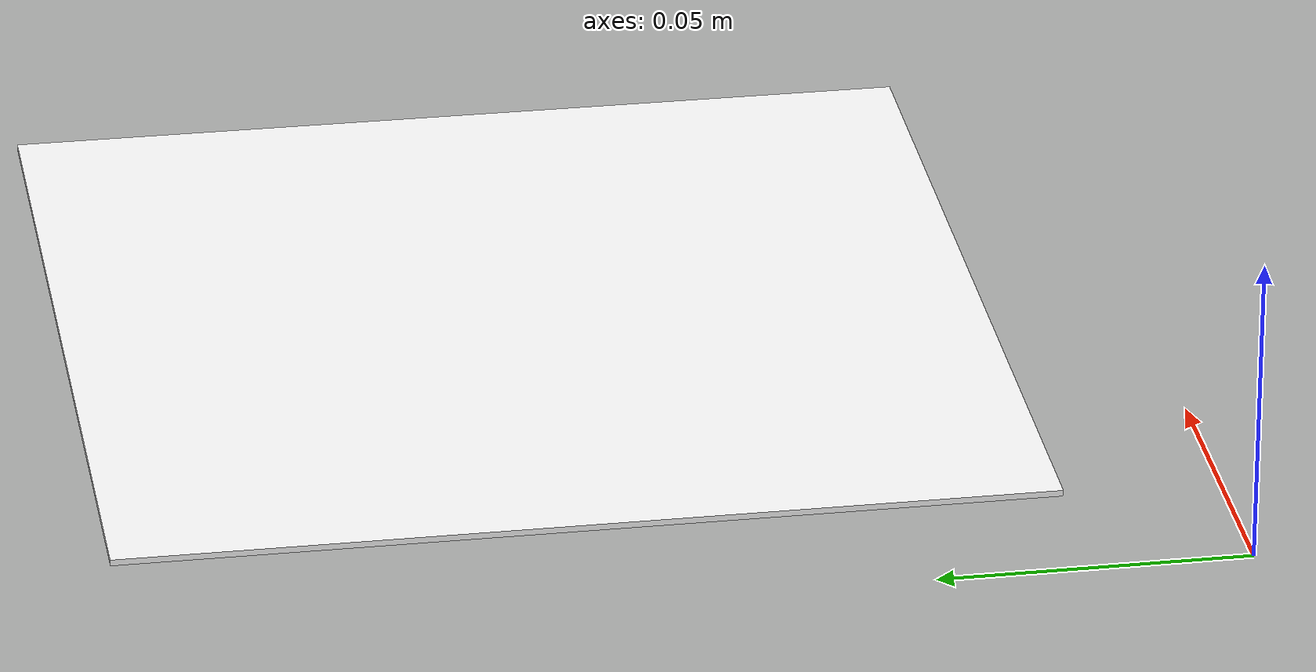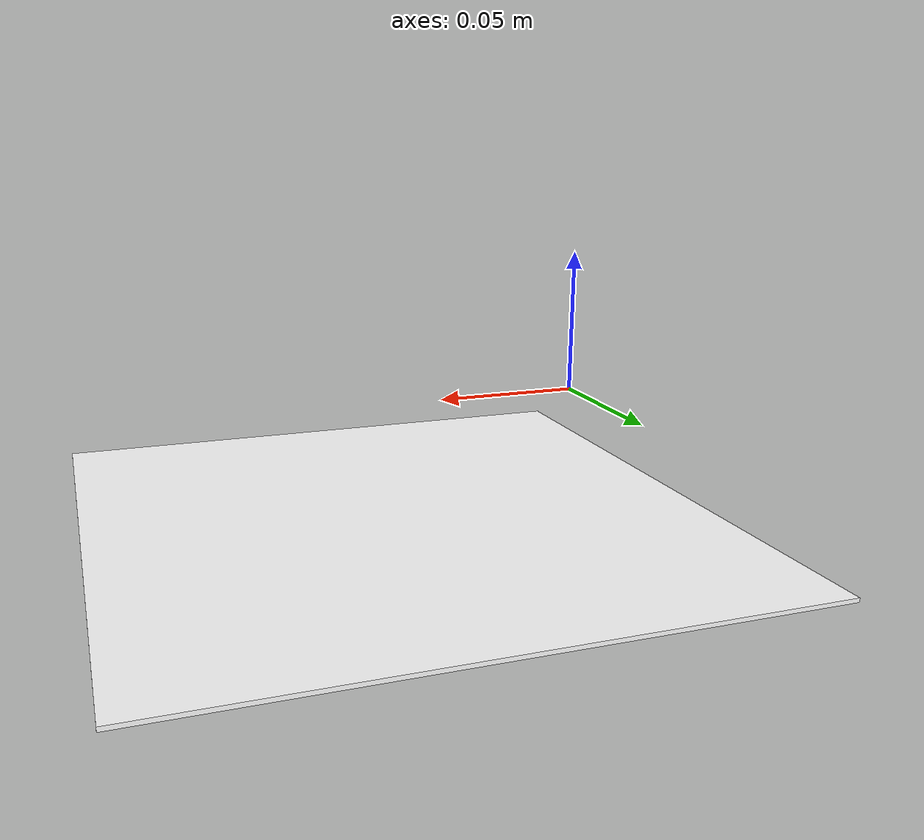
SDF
<?xml version="1.0" ?>
<sdf version="1.9">
  <model name="arena_apriltag">
    <pose>0.1 0.1 0 0 0 0</pose>
    <static>true</static>
    <link name="link">
      <visual name="visual">
        <geometry>
          <box>
            <size>0.15 0.15 0.001</size>
          </box>
        </geometry>
        <material>
          <ambient>1 1 1 1</ambient>
          <diffuse>1 1 1 1</diffuse>
          <specular>0.5 0.5 0.5 1</specular>
          <pbr>
            <metal>
              <albedo_map>materials/textures/arena_apriltag.png</albedo_map>
              <roughness>0.5</roughness>
              <metalness>0.0</metalness>
            </metal>
          </pbr>
        </material>
      </visual>
      <collision name="collision">
        <geometry>
          <box>
            <size>0.15 0.15 0.001</size>
          </box>
        </geometry>
      </collision>
    </link>
  </model>
</sdf>
